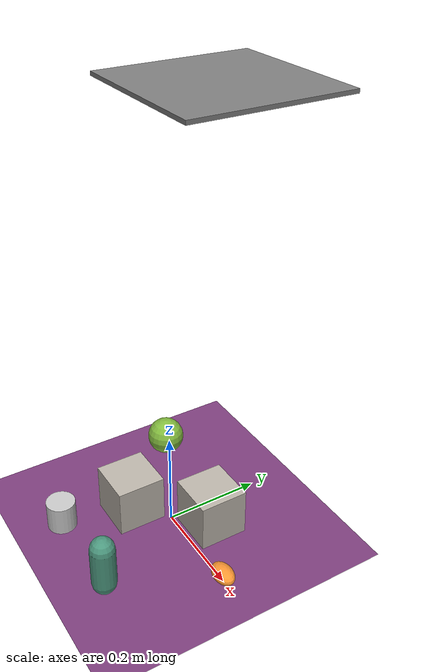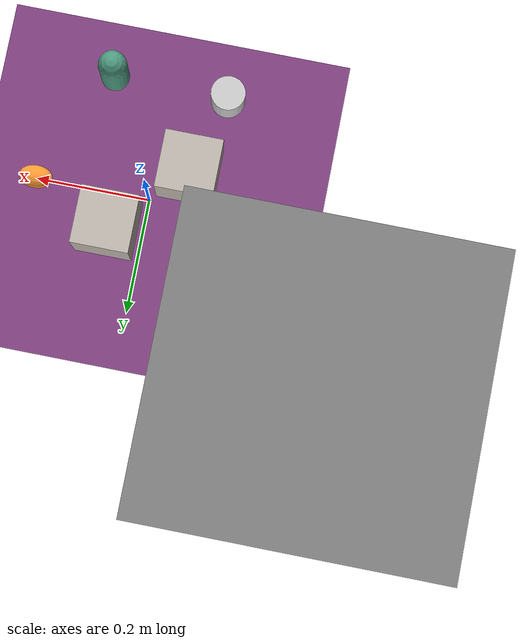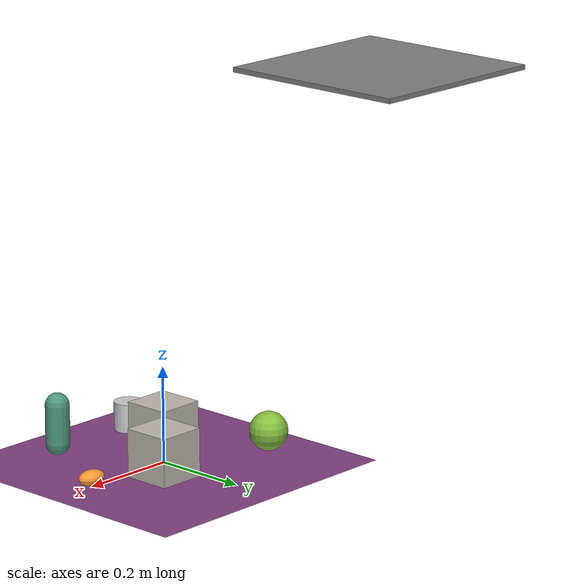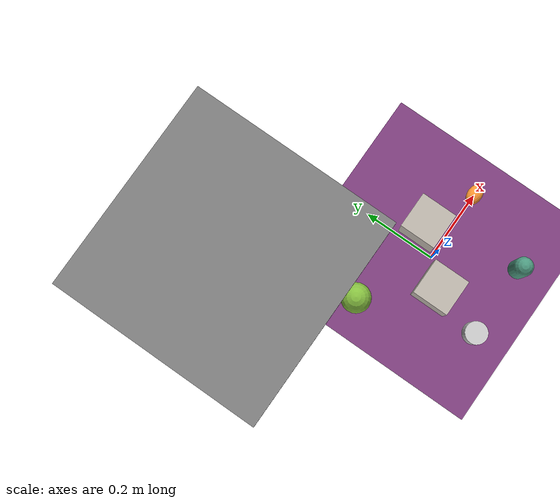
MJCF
<mujoco model="textured">
  <compiler angle="degree" texturedir="textures"/>
  <asset>
    <texture name="block" type="cube" colorspace="linear" file="block.png" gridsize="3 4" gridlayout=".U..LFRB.D.."/>
    <texture name="checker" type="2d" builtin="checker" rgb1="0.9 0.2 0.1" rgb2="0.1 0.3 0.9" width="64" height="64"/>
    <texture name="stripes" type="2d" builtin="gradient" rgb1="0.95 0.9 0.2" rgb2="0.1 0.6 0.3" width="32" height="32" mark="edge" markrgb="0 0 0"/>
    <texture name="crossed" type="cube" builtin="flat" mark="cross" rgb1="0.3 0.6 0.5" rgb2="0.8 0.3 0.2" markrgb="1 1 1" width="31"/>
    <material name="block" texture="block"/>
    <material name="floor" texture="checker" texrepeat="3 3"/>
    <material name="metal_ball" texture="stripes" metallic="0.8" roughness="0.3"/>
    <material name="capsule" texture="crossed" specular="1" shininess="0.3"/>
    <material name="rough" rgba="0.8 0.8 0.8 1" roughness="0.6"/>
    <material name="glow" rgba="1 0.6 0.2 1" emission="2"/>
  </asset>
  <worldbody>
    <geom name="floor" type="plane" size="0.3 0.3 0.01" material="floor"/>
    <body name="cube_a" pos="-0.06 -0.06 0.05">
      <geom name="cube_a" type="box" size="0.05 0.05 0.05" material="block"/>
    </body>
    <body name="cube_b" pos="0.06 0.06 0.05" quat="0 0.7071068 0.7071068 0">
      <geom name="cube_b" type="box" size="0.05 0.05 0.05" material="block"/>
    </body>
    <geom name="ball" type="sphere" size="0.04" pos="-0.2 0.1 0.04" material="metal_ball"/>
    <geom name="pill" type="capsule" size="0.025 0.04" pos="0.1 -0.2 0.06" material="capsule"/>
    <geom name="drum" type="cylinder" size="0.03 0.03" pos="-0.1 -0.2 0.03" material="rough"/>
    <geom name="bean" type="ellipsoid" size="0.03 0.02 0.015" pos="0.2 0.0 0.02" material="glow"/>
    <geom name="ceiling_light" type="box" size="0.2 0.2 0.005" pos="-0.3 0.3 0.8"/>
    <camera name="cam" pos="0.29 -0.29 0.333" xyaxes="0.7071068 0.7071068 0 -0.4 0.4 0.82"/>
  </worldbody>
</mujoco>
